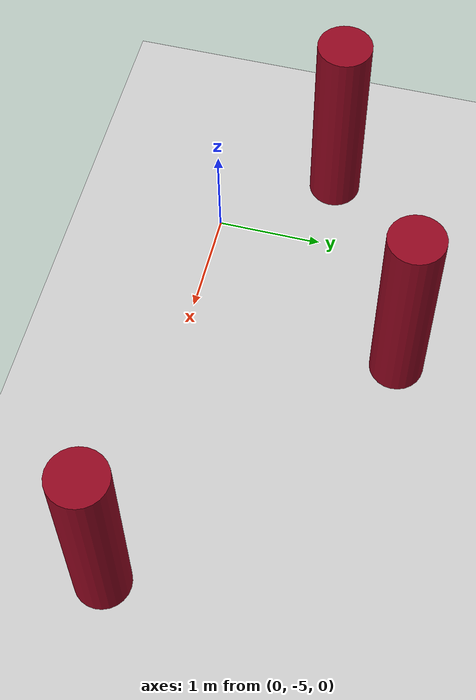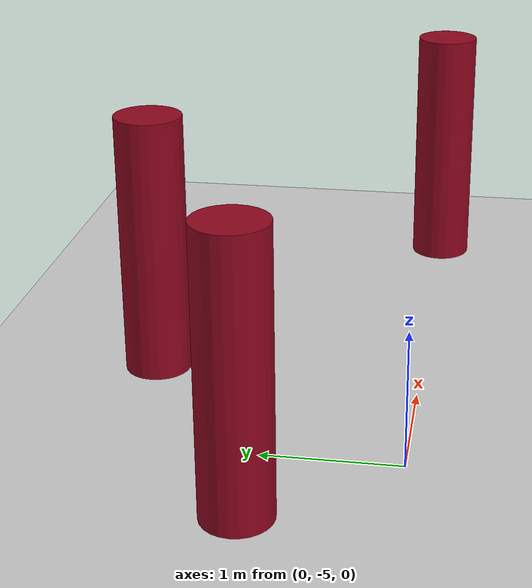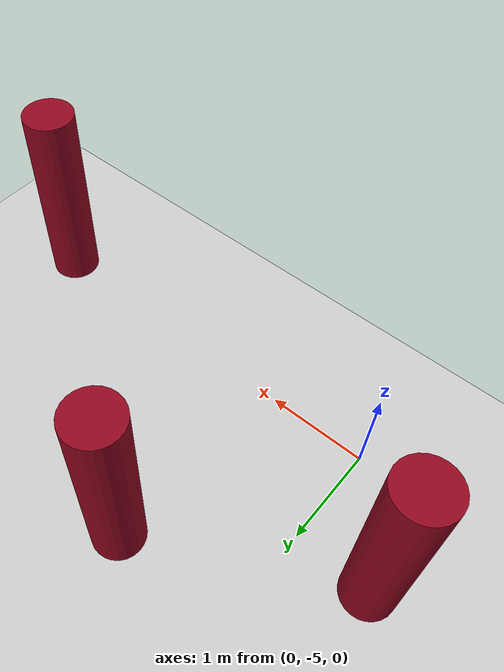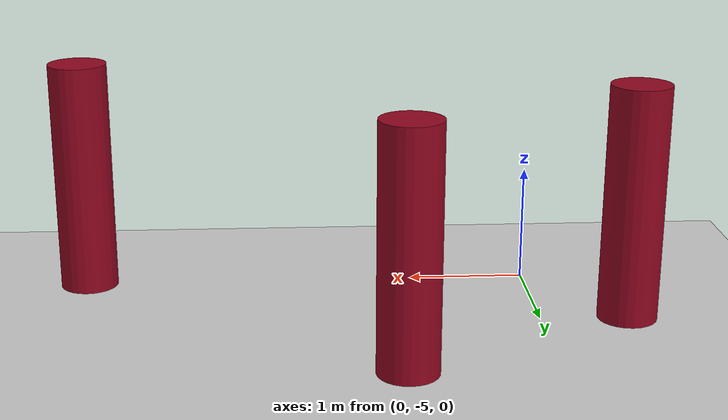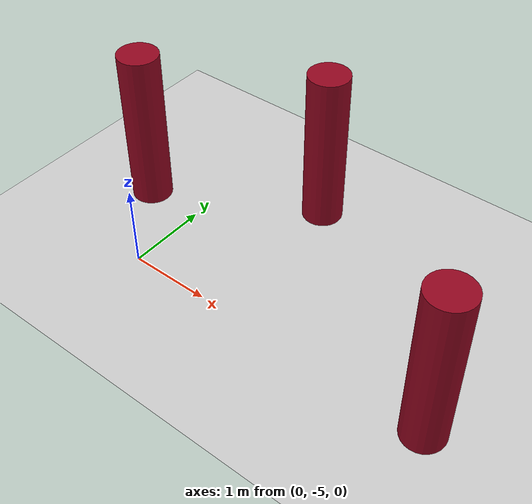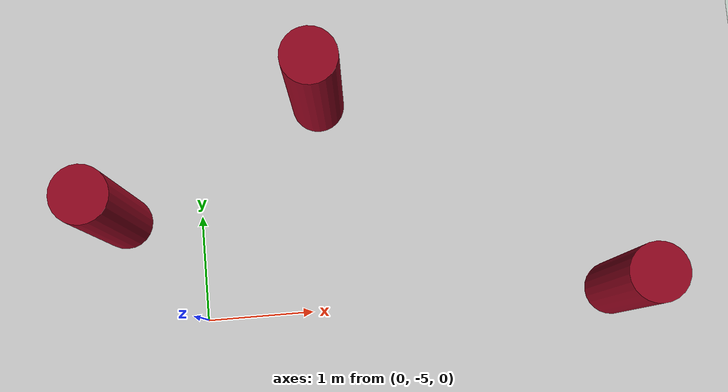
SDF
<sdf version="1.6">
 <world name="default">
  <model name="ground_plane">
   <static>1</static>
   <link name="link">
    <collision name="collision">
     <geometry><plane><normal>0 0 1</normal><size>100 100</size></plane></geometry>
     <surface><friction><ode><mu>100</mu><mu2>50</mu2></ode></friction></surface>
    </collision>
    <visual name="visual">
     <cast_shadows>0</cast_shadows>
     <geometry><plane><normal>0 0 1</normal><size>100 100</size></plane></geometry>
     <material>
      <script><uri>file://media/materials/scripts/gazebo.material</uri><name>Gazebo/Grey</name></script>
     </material>
    </visual>
    <velocity_decay><linear>0</linear><angular>0</angular></velocity_decay>
   </link>
  </model>
  <model name="box_1">
   <link name="link">
    <inertial>
     <mass>1</mass>
     <inertia><ixx>0.145833</ixx><ixy>0</ixy><ixz>0</ixz><iyy>0.145833</iyy><iyz>0</iyz><izz>0.125</izz></inertia>
    </inertial>
    <visual name="visual">
     <geometry><cylinder><radius>0.25</radius><length>2</length></cylinder></geometry>
     <material>
      <script><name>Gazebo/Grey</name><uri>file://media/materials/scripts/gazebo.material</uri></script>
      <ambient>0.847 0 0.055 1</ambient>
      <diffuse>0.576 0.024 0.125 1</diffuse>
      <specular>0.01 0.01 0.01 1</specular>
      <emissive>0 0 0 1</emissive>
      <shader type="vertex"><normal_map>__default__</normal_map></shader>
     </material>
    </visual>
    <collision name="collision">
     <geometry><cylinder><radius>0.25</radius><length>2</length></cylinder></geometry>
     <surface>
      <friction>
       <ode><mu>1</mu><mu2>1</mu2><fdir1>0 0 0</fdir1><slip1>0</slip1><slip2>0</slip2></ode>
       <torsional>
        <coefficient>1</coefficient>
        <patch_radius>0</patch_radius>
        <surface_radius>0</surface_radius>
        <use_patch_radius>1</use_patch_radius>
        <ode><slip>0</slip></ode>
       </torsional>
      </friction>
      <bounce><restitution_coefficient>0</restitution_coefficient><threshold>1e+06</threshold></bounce>
      <contact>
       <collide_without_contact>0</collide_without_contact>
       <collide_without_contact_bitmask>1</collide_without_contact_bitmask>
       <collide_bitmask>1</collide_bitmask>
       <ode>
        <soft_cfm>0</soft_cfm>
        <soft_erp>0.2</soft_erp>
        <kp>1e+13</kp>
        <kd>1</kd>
        <max_vel>0.01</max_vel>
        <min_depth>0</min_depth>
       </ode>
       <bullet>
        <split_impulse>1</split_impulse>
        <split_impulse_penetration_threshold>-0.01</split_impulse_penetration_threshold>
        <soft_cfm>0</soft_cfm>
        <soft_erp>0.2</soft_erp>
        <kp>1e+13</kp>
        <kd>1</kd>
       </bullet>
      </contact>
     </surface>
    </collision>
   </link>
   <static>0</static>
   <pose>1.2 -3 0.999991 0 -0 0</pose>
  </model>
  <model name="box_2">
   <link name="link">
    <inertial>
     <mass>1</mass>
     <inertia><ixx>0.145833</ixx><ixy>0</ixy><ixz>0</ixz><iyy>0.145833</iyy><iyz>0</iyz><izz>0.125</izz></inertia>
    </inertial>
    <visual name="visual">
     <geometry><cylinder><radius>0.25</radius><length>2</length></cylinder></geometry>
     <material>
      <script><name>Gazebo/Grey</name><uri>file://media/materials/scripts/gazebo.material</uri></script>
      <ambient>0.847 0 0.055 1</ambient>
      <diffuse>0.576 0.024 0.125 1</diffuse>
      <specular>0.01 0.01 0.01 1</specular>
      <emissive>0 0 0 1</emissive>
      <shader type="vertex"><normal_map>__default__</normal_map></shader>
     </material>
    </visual>
    <collision name="collision">
     <geometry><cylinder><radius>0.25</radius><length>2</length></cylinder></geometry>
     <surface>
      <friction>
       <ode><mu>1</mu><mu2>1</mu2><fdir1>0 0 0</fdir1><slip1>0</slip1><slip2>0</slip2></ode>
       <torsional>
        <coefficient>1</coefficient>
        <patch_radius>0</patch_radius>
        <surface_radius>0</surface_radius>
        <use_patch_radius>1</use_patch_radius>
        <ode><slip>0</slip></ode>
       </torsional>
      </friction>
      <bounce><restitution_coefficient>0</restitution_coefficient><threshold>1e+06</threshold></bounce>
      <contact>
       <collide_without_contact>0</collide_without_contact>
       <collide_without_contact_bitmask>1</collide_without_contact_bitmask>
       <collide_bitmask>1</collide_bitmask>
       <ode>
        <soft_cfm>0</soft_cfm>
        <soft_erp>0.2</soft_erp>
        <kp>1e+13</kp>
        <kd>1</kd>
        <max_vel>0.01</max_vel>
        <min_depth>0</min_depth>
       </ode>
       <bullet>
        <split_impulse>1</split_impulse>
        <split_impulse_penetration_threshold>-0.01</split_impulse_penetration_threshold>
        <soft_cfm>0</soft_cfm>
        <soft_erp>0.2</soft_erp>
        <kp>1e+13</kp>
        <kd>1</kd>
       </bullet>
      </contact>
     </surface>
    </collision>
   </link>
   <static>0</static>
   <pose>-0.733333 -4 1 0 -0 0</pose>
  </model>
  <model name="box_4">
   <link name="link">
    <inertial>
     <mass>1</mass>
     <inertia><ixx>0.145833</ixx><ixy>0</ixy><ixz>0</ixz><iyy>0.145833</iyy><iyz>0</iyz><izz>0.125</izz></inertia>
    </inertial>
    <visual name="visual">
     <geometry><cylinder><radius>0.25</radius><length>2</length></cylinder></geometry>
     <material>
      <script><name>Gazebo/Grey</name><uri>file://media/materials/scripts/gazebo.material</uri></script>
      <ambient>0.847 0 0.055 1</ambient>
      <diffuse>0.576 0.024 0.125 1</diffuse>
      <specular>0.01 0.01 0.01 1</specular>
      <emissive>0 0 0 1</emissive>
      <shader type="vertex"><normal_map>__default__</normal_map></shader>
     </material>
    </visual>
    <collision name="collision">
     <geometry><cylinder><radius>0.25</radius><length>2</length></cylinder></geometry>
     <surface>
      <friction>
       <ode><mu>1</mu><mu2>1</mu2><fdir1>0 0 0</fdir1><slip1>0</slip1><slip2>0</slip2></ode>
       <torsional>
        <coefficient>1</coefficient>
        <patch_radius>0</patch_radius>
        <surface_radius>0</surface_radius>
        <use_patch_radius>1</use_patch_radius>
        <ode><slip>0</slip></ode>
       </torsional>
      </friction>
      <bounce><restitution_coefficient>0</restitution_coefficient><threshold>1e+06</threshold></bounce>
      <contact>
       <collide_without_contact>0</collide_without_contact>
       <collide_without_contact_bitmask>1</collide_without_contact_bitmask>
       <collide_bitmask>1</collide_bitmask>
       <ode>
        <soft_cfm>0</soft_cfm>
        <soft_erp>0.2</soft_erp>
        <kp>1e+13</kp>
        <kd>1</kd>
        <max_vel>0.01</max_vel>
        <min_depth>0</min_depth>
       </ode>
       <bullet>
        <split_impulse>1</split_impulse>
        <split_impulse_penetration_threshold>-0.01</split_impulse_penetration_threshold>
        <soft_cfm>0</soft_cfm>
        <soft_erp>0.2</soft_erp>
        <kp>1e+13</kp>
        <kd>1</kd>
       </bullet>
      </contact>
     </surface>
    </collision>
   </link>
   <static>0</static>
   <pose>3.86667 -5 1 0 -0 0</pose>
  </model>
 </world>
</sdf>
